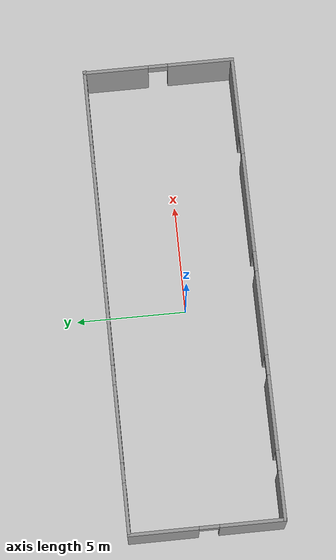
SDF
<sdf version="1.7">
 <world name="default">
  <light name="sun" type="directional">
   <pose>0 0 10 0 -0 0</pose>
   <diffuse>0.8 0.8 0.8 1</diffuse>
   <specular>0.2 0.2 0.2 1</specular>
   <attenuation>
    <range>1000</range>
    <constant>0.9</constant>
    <linear>0.01</linear>
    <quadratic>0.001</quadratic>
   </attenuation>
   <direction>-0.5 0.1 -0.9</direction>
   <spot><inner_angle>0</inner_angle><outer_angle>0</outer_angle><falloff>0</falloff></spot>
  </light>
  <model name="ground_plane">
   <static>1</static>
   <link name="link">
    <collision name="collision">
     <geometry><plane><normal>0 0 1</normal><size>100 100</size></plane></geometry>
     <surface><friction><ode><mu>100</mu><mu2>50</mu2></ode></friction></surface>
    </collision>
    <visual name="visual">
     <cast_shadows>0</cast_shadows>
     <geometry><plane><normal>0 0 1</normal><size>100 100</size></plane></geometry>
     <material>
      <script><uri>file://media/materials/scripts/gazebo.material</uri><name>Gazebo/Grey</name></script>
     </material>
    </visual>
   </link>
  </model>
  <gravity>0 0 -9.8</gravity>
  <magnetic_field>6e-06 2.3e-05 -4.2e-05</magnetic_field>
  <atmosphere type="adiabatic"/>
  <physics type="ode">
   <max_step_size>0.001</max_step_size>
   <real_time_factor>1</real_time_factor>
   <real_time_update_rate>1000</real_time_update_rate>
  </physics>
  <scene><ambient>0.4 0.4 0.4 1</ambient><background>0.7 0.7 0.7 1</background><shadows>1</shadows></scene>
  <spherical_coordinates>
   <surface_model>EARTH_WGS84</surface_model>
   <latitude_deg>0</latitude_deg>
   <longitude_deg>0</longitude_deg>
   <elevation>0</elevation>
   <heading_deg>0</heading_deg>
  </spherical_coordinates>
  <model name="Hallway_0">
   <pose>0.439449 0.139492 0 0 -0 0</pose>
   <link name="Wall_0">
    <pose>-0.091771 -3.425 0 0 -0 0</pose>
    <visual name="Wall_0_Visual_0">
     <pose>-9.62929 0 1.25 0 -0 0</pose>
     <geometry><box><size>2.24143 0.15 2.5</size></box></geometry>
     <material>
      <script><uri>file://media/materials/scripts/gazebo.material</uri><name>Gazebo/Grey</name></script>
      <ambient>1 1 1 1</ambient>
     </material>
     <meta><layer>0</layer></meta>
    </visual>
    <collision name="Wall_0_Collision_0">
     <geometry><box><size>2.24143 0.15 2.5</size></box></geometry>
     <pose>-9.62929 0 1.25 0 -0 0</pose>
    </collision>
    <visual name="Wall_0_Visual_1">
     <pose>-5.89586 0 1.25 0 -0 0</pose>
     <geometry><box><size>3.42542 0.15 2.5</size></box></geometry>
     <material>
      <script><uri>file://media/materials/scripts/gazebo.material</uri><name>Gazebo/Grey</name></script>
      <ambient>1 1 1 1</ambient>
     </material>
     <meta><layer>0</layer></meta>
    </visual>
    <collision name="Wall_0_Collision_1">
     <geometry><box><size>3.42542 0.15 2.5</size></box></geometry>
     <pose>-5.89586 0 1.25 0 -0 0</pose>
    </collision>
    <visual name="Wall_0_Visual_2">
     <pose>-1.32757 0 1.25 0 -0 0</pose>
     <geometry><box><size>3.91117 0.15 2.5</size></box></geometry>
     <material>
      <script><uri>file://media/materials/scripts/gazebo.material</uri><name>Gazebo/Grey</name></script>
      <ambient>1 1 1 1</ambient>
     </material>
     <meta><layer>0</layer></meta>
    </visual>
    <collision name="Wall_0_Collision_2">
     <geometry><box><size>3.91117 0.15 2.5</size></box></geometry>
     <pose>-1.32757 0 1.25 0 -0 0</pose>
    </collision>
    <visual name="Wall_0_Visual_3">
     <pose>3.86525 0 1.25 0 -0 0</pose>
     <geometry><box><size>4.67448 0.15 2.5</size></box></geometry>
     <material>
      <script><uri>file://media/materials/scripts/gazebo.material</uri><name>Gazebo/Grey</name></script>
      <ambient>1 1 1 1</ambient>
     </material>
     <meta><layer>0</layer></meta>
    </visual>
    <collision name="Wall_0_Collision_3">
     <geometry><box><size>4.67448 0.15 2.5</size></box></geometry>
     <pose>3.86525 0 1.25 0 -0 0</pose>
    </collision>
    <visual name="Wall_0_Visual_4">
     <pose>8.92625 0 1.25 0 -0 0</pose>
     <geometry><box><size>3.64751 0.15 2.5</size></box></geometry>
     <material>
      <script><uri>file://media/materials/scripts/gazebo.material</uri><name>Gazebo/Grey</name></script>
      <ambient>1 1 1 1</ambient>
     </material>
     <meta><layer>0</layer></meta>
    </visual>
    <collision name="Wall_0_Collision_4">
     <geometry><box><size>3.64751 0.15 2.5</size></box></geometry>
     <pose>8.92625 0 1.25 0 -0 0</pose>
    </collision>
    <visual name="Wall_0_Visual_5">
     <pose>-8.05857 0 2.25 0 -0 0</pose>
     <geometry><box><size>0.9 0.15 0.5</size></box></geometry>
     <material>
      <script><uri>file://media/materials/scripts/gazebo.material</uri><name>Gazebo/Grey</name></script>
      <ambient>1 1 1 1</ambient>
     </material>
     <meta><layer>0</layer></meta>
    </visual>
    <collision name="Wall_0_Collision_5">
     <geometry><box><size>0.9 0.15 0.5</size></box></geometry>
     <pose>-8.05857 0 2.25 0 -0 0</pose>
    </collision>
    <visual name="Wall_0_Visual_6">
     <pose>-3.73315 0 2.25 0 -0 0</pose>
     <geometry><box><size>0.9 0.15 0.5</size></box></geometry>
     <material>
      <script><uri>file://media/materials/scripts/gazebo.material</uri><name>Gazebo/Grey</name></script>
      <ambient>1 1 1 1</ambient>
     </material>
     <meta><layer>0</layer></meta>
    </visual>
    <collision name="Wall_0_Collision_6">
     <geometry><box><size>0.9 0.15 0.5</size></box></geometry>
     <pose>-3.73315 0 2.25 0 -0 0</pose>
    </collision>
    <visual name="Wall_0_Visual_7">
     <pose>1.07802 0 2.25 0 -0 0</pose>
     <geometry><box><size>0.9 0.15 0.5</size></box></geometry>
     <material>
      <script><uri>file://media/materials/scripts/gazebo.material</uri><name>Gazebo/Grey</name></script>
      <ambient>1 1 1 1</ambient>
     </material>
     <meta><layer>0</layer></meta>
    </visual>
    <collision name="Wall_0_Collision_7">
     <geometry><box><size>0.9 0.15 0.5</size></box></geometry>
     <pose>1.07802 0 2.25 0 -0 0</pose>
    </collision>
    <visual name="Wall_0_Visual_8">
     <pose>6.65249 0 2.25 0 -0 0</pose>
     <geometry><box><size>0.9 0.15 0.5</size></box></geometry>
     <material>
      <script><uri>file://media/materials/scripts/gazebo.material</uri><name>Gazebo/Grey</name></script>
      <ambient>1 1 1 1</ambient>
     </material>
     <meta><layer>0</layer></meta>
    </visual>
    <collision name="Wall_0_Collision_8">
     <geometry><box><size>0.9 0.15 0.5</size></box></geometry>
     <pose>6.65249 0 2.25 0 -0 0</pose>
    </collision>
   </link>
   <link name="Wall_3">
    <pose>0 3.425 0 0 -0 0</pose>
    <visual name="Wall_3_Visual_0">
     <pose>-9.65149 0 1.25 0 -0 0</pose>
     <geometry><box><size>2.38056 0.15 2.5</size></box></geometry>
     <material>
      <script><uri>file://media/materials/scripts/gazebo.material</uri><name>Gazebo/Grey</name></script>
      <ambient>1 1 1 1</ambient>
     </material>
     <meta><layer>0</layer></meta>
    </visual>
    <collision name="Wall_3_Collision_0">
     <geometry><box><size>2.38056 0.15 2.5</size></box></geometry>
     <pose>-9.65149 0 1.25 0 -0 0</pose>
    </collision>
    <visual name="Wall_3_Visual_1">
     <pose>-5.80657 0 1.25 0 -0 0</pose>
     <geometry><box><size>3.50927 0.15 2.5</size></box></geometry>
     <material>
      <script><uri>file://media/materials/scripts/gazebo.material</uri><name>Gazebo/Grey</name></script>
      <ambient>1 1 1 1</ambient>
     </material>
     <meta><layer>0</layer></meta>
    </visual>
    <collision name="Wall_3_Collision_1">
     <geometry><box><size>3.50927 0.15 2.5</size></box></geometry>
     <pose>-5.80657 0 1.25 0 -0 0</pose>
    </collision>
    <visual name="Wall_3_Visual_2">
     <pose>-1.25733 0 1.25 0 -0 0</pose>
     <geometry><box><size>3.78922 0.15 2.5</size></box></geometry>
     <material>
      <script><uri>file://media/materials/scripts/gazebo.material</uri><name>Gazebo/Grey</name></script>
      <ambient>1 1 1 1</ambient>
     </material>
     <meta><layer>0</layer></meta>
    </visual>
    <collision name="Wall_3_Collision_2">
     <geometry><box><size>3.78922 0.15 2.5</size></box></geometry>
     <pose>-1.25733 0 1.25 0 -0 0</pose>
    </collision>
    <visual name="Wall_3_Visual_3">
     <pose>3.93348 0 1.25 0 -0 0</pose>
     <geometry><box><size>4.79239 0.15 2.5</size></box></geometry>
     <material>
      <script><uri>file://media/materials/scripts/gazebo.material</uri><name>Gazebo/Grey</name></script>
      <ambient>1 1 1 1</ambient>
     </material>
     <meta><layer>0</layer></meta>
    </visual>
    <collision name="Wall_3_Collision_3">
     <geometry><box><size>4.79239 0.15 2.5</size></box></geometry>
     <pose>3.93348 0 1.25 0 -0 0</pose>
    </collision>
    <visual name="Wall_3_Visual_4">
     <pose>9.03572 0 1.25 0 -0 0</pose>
     <geometry><box><size>3.6121 0.15 2.5</size></box></geometry>
     <material>
      <script><uri>file://media/materials/scripts/gazebo.material</uri><name>Gazebo/Grey</name></script>
      <ambient>1 1 1 1</ambient>
     </material>
     <meta><layer>0</layer></meta>
    </visual>
    <collision name="Wall_3_Collision_4">
     <geometry><box><size>3.6121 0.15 2.5</size></box></geometry>
     <pose>9.03572 0 1.25 0 -0 0</pose>
    </collision>
    <visual name="Wall_3_Visual_5">
     <pose>-8.01121 0 2.25 0 -0 0</pose>
     <geometry><box><size>0.9 0.15 0.5</size></box></geometry>
     <material>
      <script><uri>file://media/materials/scripts/gazebo.material</uri><name>Gazebo/Grey</name></script>
      <ambient>1 1 1 1</ambient>
     </material>
     <meta><layer>0</layer></meta>
    </visual>
    <collision name="Wall_3_Collision_5">
     <geometry><box><size>0.9 0.15 0.5</size></box></geometry>
     <pose>-8.01121 0 2.25 0 -0 0</pose>
    </collision>
    <visual name="Wall_3_Visual_6">
     <pose>-3.60194 0 2.25 0 -0 0</pose>
     <geometry><box><size>0.9 0.15 0.5</size></box></geometry>
     <material>
      <script><uri>file://media/materials/scripts/gazebo.material</uri><name>Gazebo/Grey</name></script>
      <ambient>1 1 1 1</ambient>
     </material>
     <meta><layer>0</layer></meta>
    </visual>
    <collision name="Wall_3_Collision_6">
     <geometry><box><size>0.9 0.15 0.5</size></box></geometry>
     <pose>-3.60194 0 2.25 0 -0 0</pose>
    </collision>
    <visual name="Wall_3_Visual_7">
     <pose>1.08728 0 2.25 0 -0 0</pose>
     <geometry><box><size>0.9 0.15 0.5</size></box></geometry>
     <material>
      <script><uri>file://media/materials/scripts/gazebo.material</uri><name>Gazebo/Grey</name></script>
      <ambient>1 1 1 1</ambient>
     </material>
     <meta><layer>0</layer></meta>
    </visual>
    <collision name="Wall_3_Collision_7">
     <geometry><box><size>0.9 0.15 0.5</size></box></geometry>
     <pose>1.08728 0 2.25 0 -0 0</pose>
    </collision>
    <visual name="Wall_3_Visual_8">
     <pose>6.77967 0 2.25 0 -0 0</pose>
     <geometry><box><size>0.9 0.15 0.5</size></box></geometry>
     <material>
      <script><uri>file://media/materials/scripts/gazebo.material</uri><name>Gazebo/Grey</name></script>
      <ambient>1 1 1 1</ambient>
     </material>
     <meta><layer>0</layer></meta>
    </visual>
    <collision name="Wall_3_Collision_8">
     <geometry><box><size>0.9 0.15 0.5</size></box></geometry>
     <pose>6.77967 0 2.25 0 -0 0</pose>
    </collision>
   </link>
   <link name="Wall_5">
    <pose>-10.7668 0 0 0 -0 -1.5708</pose>
    <visual name="Wall_5_Visual_0">
     <pose>-1.92557 0 1.25 0 -0 0</pose>
     <geometry><box><size>3.14886 0.15 2.5</size></box></geometry>
     <material>
      <script><uri>file://media/materials/scripts/gazebo.material</uri><name>Gazebo/Grey</name></script>
      <ambient>1 1 1 1</ambient>
     </material>
     <meta><layer>0</layer></meta>
    </visual>
    <collision name="Wall_5_Collision_0">
     <geometry><box><size>3.14886 0.15 2.5</size></box></geometry>
     <pose>-1.92557 0 1.25 0 -0 0</pose>
    </collision>
    <visual name="Wall_5_Visual_1">
     <pose>2.02443 0 1.25 0 -0 0</pose>
     <geometry><box><size>2.95114 0.15 2.5</size></box></geometry>
     <material>
      <script><uri>file://media/materials/scripts/gazebo.material</uri><name>Gazebo/Grey</name></script>
      <ambient>1 1 1 1</ambient>
     </material>
     <meta><layer>0</layer></meta>
    </visual>
    <collision name="Wall_5_Collision_1">
     <geometry><box><size>2.95114 0.15 2.5</size></box></geometry>
     <pose>2.02443 0 1.25 0 -0 0</pose>
    </collision>
    <visual name="Wall_5_Visual_2">
     <pose>0.098859 0 2.25 0 -0 0</pose>
     <geometry><box><size>0.9 0.15 0.5</size></box></geometry>
     <material>
      <script><uri>file://media/materials/scripts/gazebo.material</uri><name>Gazebo/Grey</name></script>
      <ambient>1 1 1 1</ambient>
     </material>
     <meta><layer>0</layer></meta>
    </visual>
    <collision name="Wall_5_Collision_2">
     <geometry><box><size>0.9 0.15 0.5</size></box></geometry>
     <pose>0.098859 0 2.25 0 -0 0</pose>
    </collision>
   </link>
   <link name="Wall_7">
    <pose>10.7362 0 0 0 -0 -1.5708</pose>
    <visual name="Wall_7_Visual_0">
     <pose>-1.98708 0 1.25 0 -0 0</pose>
     <geometry><box><size>3.02584 0.15 2.5</size></box></geometry>
     <material>
      <script><uri>file://media/materials/scripts/gazebo.material</uri><name>Gazebo/Grey</name></script>
      <ambient>1 1 1 1</ambient>
     </material>
     <meta><layer>0</layer></meta>
    </visual>
    <collision name="Wall_7_Collision_0">
     <geometry><box><size>3.02584 0.15 2.5</size></box></geometry>
     <pose>-1.98708 0 1.25 0 -0 0</pose>
    </collision>
    <visual name="Wall_7_Visual_1">
     <pose>1.96292 0 1.25 0 -0 0</pose>
     <geometry><box><size>3.07416 0.15 2.5</size></box></geometry>
     <material>
      <script><uri>file://media/materials/scripts/gazebo.material</uri><name>Gazebo/Grey</name></script>
      <ambient>1 1 1 1</ambient>
     </material>
     <meta><layer>0</layer></meta>
    </visual>
    <collision name="Wall_7_Collision_1">
     <geometry><box><size>3.07416 0.15 2.5</size></box></geometry>
     <pose>1.96292 0 1.25 0 -0 0</pose>
    </collision>
    <visual name="Wall_7_Visual_2">
     <pose>-0.024155 0 2.25 0 -0 0</pose>
     <geometry><box><size>0.9 0.15 0.5</size></box></geometry>
     <material>
      <script><uri>file://media/materials/scripts/gazebo.material</uri><name>Gazebo/Grey</name></script>
      <ambient>1 1 1 1</ambient>
     </material>
     <meta><layer>0</layer></meta>
    </visual>
    <collision name="Wall_7_Collision_2">
     <geometry><box><size>0.9 0.15 0.5</size></box></geometry>
     <pose>-0.024155 0 2.25 0 -0 0</pose>
    </collision>
   </link>
   <static>1</static>
  </model>
 </world>
</sdf>
